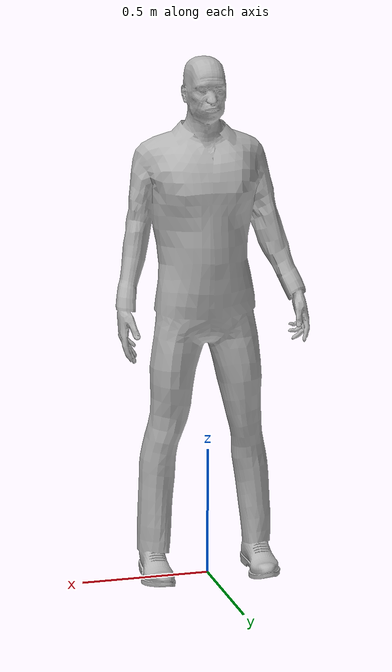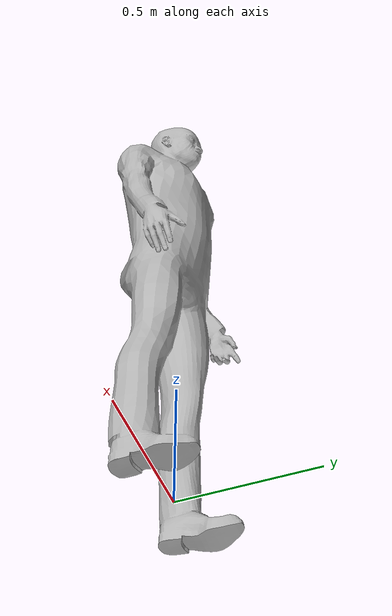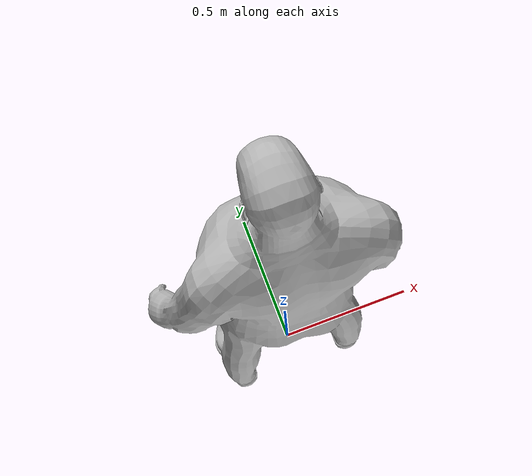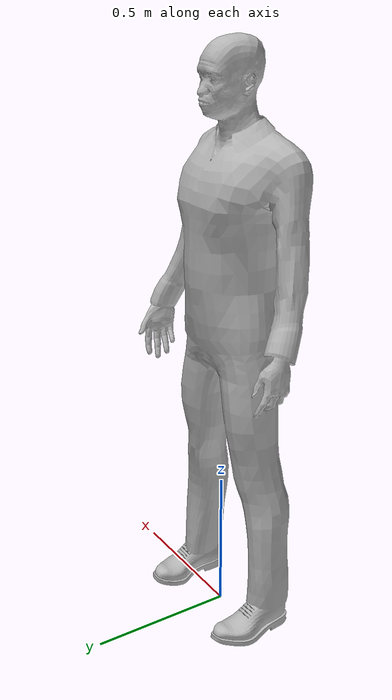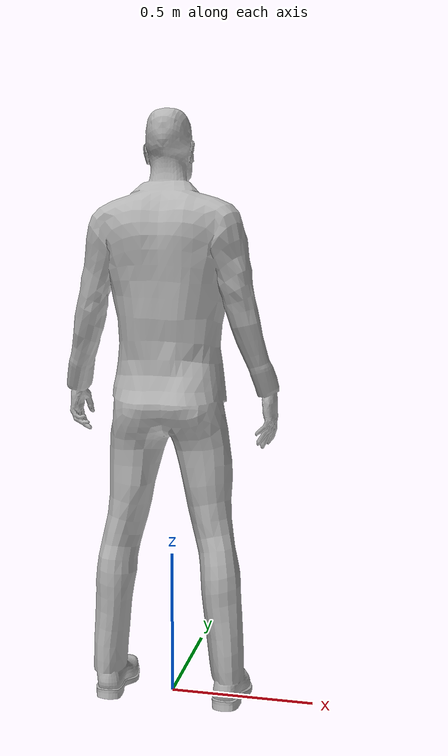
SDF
<?xml version="1.0" ?>
<sdf version="1.5">
  <model name="standpeople">
      <static>0</static>
    <link name="link">
      <inertial>
        <pose>0 -0.1 0.95 0 0 0</pose>
        <mass>0.001</mass>
        <inertia>
          <ixx>24.88</ixx>
          <ixy>0</ixy>
          <ixz>0</ixz>
          <iyy>25.73</iyy>
          <iyz>0</iyz>
          <izz>2.48</izz>
        </inertia>
      </inertial>

      <collision name="bottom">
        <pose>0 0 0.01 0 0 1.57</pose>
        <geometry>
          <box>
            <size>0.5 0.35 0.02</size>
          </box>
        </geometry>
      </collision>

      <collision name="person">
        <pose>0 0 0.02 0 0 3.14</pose>
        <geometry>
          <mesh>
            <uri>file://standpeople/meshes/bobeye/meshes/bobeyev2.dae</uri>
          </mesh>
        </geometry>
      </collision>

      <visual name="visual">
        <pose>0 0 0.02 0 0 3.14</pose>
        <geometry>
          <mesh>
            <uri>file://standpeople/meshes/bobeye/meshes/bobeyev2.dae</uri>
          </mesh>
        </geometry>
      </visual>
    </link>
  </model>
</sdf>
